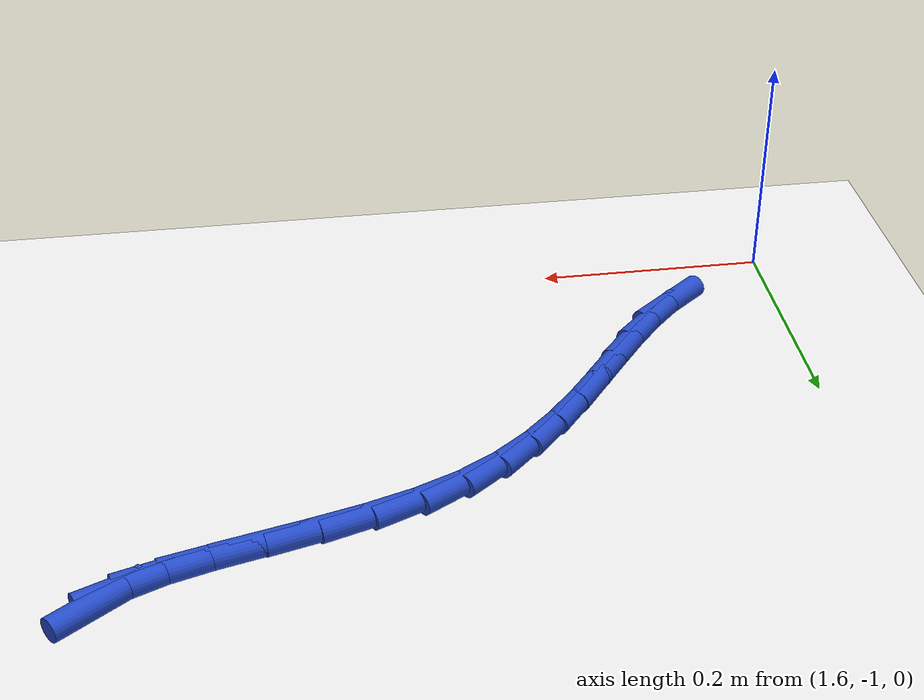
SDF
<sdf version="1.6">
 <world name="default">
  <model name="ground_plane">
   <static>1</static>
   <link name="link">
    <collision name="collision">
     <geometry><plane><normal>0 0 1</normal><size>100 100</size></plane></geometry>
     <surface><friction><ode><mu>100</mu><mu2>50</mu2></ode></friction></surface>
    </collision>
    <visual name="visual">
     <cast_shadows>0</cast_shadows>
     <geometry><plane><normal>0 0 1</normal><size>100 100</size></plane></geometry>
     <material>
      <script><uri>file://media/materials/scripts/gazebo.material</uri><name>Gazebo/WhiteGlow</name></script>
     </material>
    </visual>
   </link>
  </model>
  <model name="line">
   <link name="link_121">
    <pose>2.1944324184371538 -0.6129220828826335 0.01 0 1.57 0.6190631001662785</pose>
    <collision name="collision">
     <geometry><cylinder><radius>0.01</radius><length>0.08</length></cylinder></geometry>
    </collision>
    <visual name="visual">
     <material>
      <script><name>Gazebo/Blue</name><uri>file://media/materials/scripts/gazebo.material</uri></script>
     </material>
     <geometry><cylinder><radius>0.01</radius><length>0.08</length></cylinder></geometry>
    </visual>
   </link>
   <link name="link_122">
    <pose>2.1742725166181676 -0.6272859231317229 0.01 0 1.57 0.40346905344406575</pose>
    <collision name="collision">
     <geometry><cylinder><radius>0.01</radius><length>0.08</length></cylinder></geometry>
    </collision>
    <visual name="visual">
     <material>
      <script><name>Gazebo/Blue</name><uri>file://media/materials/scripts/gazebo.material</uri></script>
     </material>
     <geometry><cylinder><radius>0.01</radius><length>0.08</length></cylinder></geometry>
    </visual>
   </link>
   <link name="link_123">
    <pose>2.1465454620891236 -0.6391222811465072 0.01 0 1.57 0.29561872773765385</pose>
    <collision name="collision">
     <geometry><cylinder><radius>0.01</radius><length>0.08</length></cylinder></geometry>
    </collision>
    <visual name="visual">
     <material>
      <script><name>Gazebo/Blue</name><uri>file://media/materials/scripts/gazebo.material</uri></script>
     </material>
     <geometry><cylinder><radius>0.01</radius><length>0.08</length></cylinder></geometry>
    </visual>
   </link>
   <link name="link_124">
    <pose>2.112979281844324 -0.6493445996844814 0.01 0 1.57 0.2475350213288447</pose>
    <collision name="collision">
     <geometry><cylinder><radius>0.01</radius><length>0.08</length></cylinder></geometry>
    </collision>
    <visual name="visual">
     <material>
      <script><name>Gazebo/Blue</name><uri>file://media/materials/scripts/gazebo.material</uri></script>
     </material>
     <geometry><cylinder><radius>0.01</radius><length>0.08</length></cylinder></geometry>
    </visual>
   </link>
   <link name="link_125">
    <pose>2.075302002878071 -0.6588663215031403 0.01 0 1.57 0.2383773596437043</pose>
    <collision name="collision">
     <geometry><cylinder><radius>0.01</radius><length>0.08</length></cylinder></geometry>
    </collision>
    <visual name="visual">
     <material>
      <script><name>Gazebo/Blue</name><uri>file://media/materials/scripts/gazebo.material</uri></script>
     </material>
     <geometry><cylinder><radius>0.01</radius><length>0.08</length></cylinder></geometry>
    </visual>
   </link>
   <link name="link_126">
    <pose>2.035241652184668 -0.6686008893599783 0.01 0 1.57 0.260680762417112</pose>
    <collision name="collision">
     <geometry><cylinder><radius>0.01</radius><length>0.08</length></cylinder></geometry>
    </collision>
    <visual name="visual">
     <material>
      <script><name>Gazebo/Blue</name><uri>file://media/materials/scripts/gazebo.material</uri></script>
     </material>
     <geometry><cylinder><radius>0.01</radius><length>0.08</length></cylinder></geometry>
    </visual>
   </link>
   <link name="link_127">
    <pose>1.994526256758419 -0.6794617460124907 0.01 0 1.57 0.3146152431314647</pose>
    <collision name="collision">
     <geometry><cylinder><radius>0.01</radius><length>0.08</length></cylinder></geometry>
    </collision>
    <visual name="visual">
     <material>
      <script><name>Gazebo/Blue</name><uri>file://media/materials/scripts/gazebo.material</uri></script>
     </material>
     <geometry><cylinder><radius>0.01</radius><length>0.08</length></cylinder></geometry>
    </visual>
   </link>
   <link name="link_128">
    <pose>1.9548838435936264 -0.6923623342181721 0.01 0 1.57 0.40637189287399333</pose>
    <collision name="collision">
     <geometry><cylinder><radius>0.01</radius><length>0.08</length></cylinder></geometry>
    </collision>
    <visual name="visual">
     <material>
      <script><name>Gazebo/Blue</name><uri>file://media/materials/scripts/gazebo.material</uri></script>
     </material>
     <geometry><cylinder><radius>0.01</radius><length>0.08</length></cylinder></geometry>
    </visual>
   </link>
   <link name="link_129">
    <pose>1.9180424364404967 -0.7082160945068895 0.01 0 1.57 0.5354373766903606</pose>
    <collision name="collision">
     <geometry><cylinder><radius>0.01</radius><length>0.08</length></cylinder></geometry>
    </collision>
    <visual name="visual">
     <material>
      <script><name>Gazebo/Blue</name><uri>file://media/materials/scripts/gazebo.material</uri></script>
     </material>
     <geometry><cylinder><radius>0.01</radius><length>0.08</length></cylinder></geometry>
    </visual>
   </link>
   <link name="link_130">
    <pose>1.8852993789061812 -0.727640731672575 0.01 0 1.57 0.6603334756357303</pose>
    <collision name="collision">
     <geometry><cylinder><radius>0.01</radius><length>0.08</length></cylinder></geometry>
    </collision>
    <visual name="visual">
     <material>
      <script><name>Gazebo/Blue</name><uri>file://media/materials/scripts/gazebo.material</uri></script>
     </material>
     <geometry><cylinder><radius>0.01</radius><length>0.08</length></cylinder></geometry>
    </visual>
   </link>
   <link name="link_131">
    <pose>1.8563295441978087 -0.7501398464913186 0.01 0 1.57 0.7639330220445713</pose>
    <collision name="collision">
     <geometry><cylinder><radius>0.01</radius><length>0.08</length></cylinder></geometry>
    </collision>
    <visual name="visual">
     <material>
      <script><name>Gazebo/Blue</name><uri>file://media/materials/scripts/gazebo.material</uri></script>
     </material>
     <geometry><cylinder><radius>0.01</radius><length>0.08</length></cylinder></geometry>
    </visual>
   </link>
   <link name="link_132">
    <pose>1.8304258080492377 -0.7749547330001977 0.01 0 1.57 0.8419758677195202</pose>
    <collision name="collision">
     <geometry><cylinder><radius>0.01</radius><length>0.08</length></cylinder></geometry>
    </collision>
    <visual name="visual">
     <material>
      <script><name>Gazebo/Blue</name><uri>file://media/materials/scripts/gazebo.material</uri></script>
     </material>
     <geometry><cylinder><radius>0.01</radius><length>0.08</length></cylinder></geometry>
    </visual>
   </link>
   <link name="link_133">
    <pose>1.806881046194327 -0.8013266852362878 0.01 0 1.57 0.8925494465111178</pose>
    <collision name="collision">
     <geometry><cylinder><radius>0.01</radius><length>0.08</length></cylinder></geometry>
    </collision>
    <visual name="visual">
     <material>
      <script><name>Gazebo/Blue</name><uri>file://media/materials/scripts/gazebo.material</uri></script>
     </material>
     <geometry><cylinder><radius>0.01</radius><length>0.08</length></cylinder></geometry>
    </visual>
   </link>
   <link name="link_134">
    <pose>1.7849881343669365 -0.8284969972366668 0.01 0 1.57 0.9146980794026588</pose>
    <collision name="collision">
     <geometry><cylinder><radius>0.01</radius><length>0.08</length></cylinder></geometry>
    </collision>
    <visual name="visual">
     <material>
      <script><name>Gazebo/Blue</name><uri>file://media/materials/scripts/gazebo.material</uri></script>
     </material>
     <geometry><cylinder><radius>0.01</radius><length>0.08</length></cylinder></geometry>
    </visual>
   </link>
   <link name="link_135">
    <pose>1.764039948300926 -0.8557069630384121 0.01 0 1.57 0.9072521593078152</pose>
    <collision name="collision">
     <geometry><cylinder><radius>0.01</radius><length>0.08</length></cylinder></geometry>
    </collision>
    <visual name="visual">
     <material>
      <script><name>Gazebo/Blue</name><uri>file://media/materials/scripts/gazebo.material</uri></script>
     </material>
     <geometry><cylinder><radius>0.01</radius><length>0.08</length></cylinder></geometry>
    </visual>
   </link>
   <link name="link_136">
    <pose>1.7433293637301528 -0.8821978766785996 0.01 0 1.57 0.868187009753783</pose>
    <collision name="collision">
     <geometry><cylinder><radius>0.01</radius><length>0.08</length></cylinder></geometry>
    </collision>
    <visual name="visual">
     <material>
      <script><name>Gazebo/Blue</name><uri>file://media/materials/scripts/gazebo.material</uri></script>
     </material>
     <geometry><cylinder><radius>0.01</radius><length>0.08</length></cylinder></geometry>
    </visual>
   </link>
   <link name="link_137">
    <pose>1.722149256388477 -0.9072110321943071 0.01 0 1.57 0.7947022376734125</pose>
    <collision name="collision">
     <geometry><cylinder><radius>0.01</radius><length>0.08</length></cylinder></geometry>
    </collision>
    <visual name="visual">
     <material>
      <script><name>Gazebo/Blue</name><uri>file://media/materials/scripts/gazebo.material</uri></script>
     </material>
     <geometry><cylinder><radius>0.01</radius><length>0.08</length></cylinder></geometry>
    </visual>
   </link>
   <link name="link_138">
    <pose>1.6997925020097564 -0.9299877236226117 0.01 0 1.57 0.6845058076341326</pose>
    <collision name="collision">
     <geometry><cylinder><radius>0.01</radius><length>0.08</length></cylinder></geometry>
    </collision>
    <visual name="visual">
     <material>
      <script><name>Gazebo/Blue</name><uri>file://media/materials/scripts/gazebo.material</uri></script>
     </material>
     <geometry><cylinder><radius>0.01</radius><length>0.08</length></cylinder></geometry>
    </visual>
   </link>
  </model>
 </world>
</sdf>
